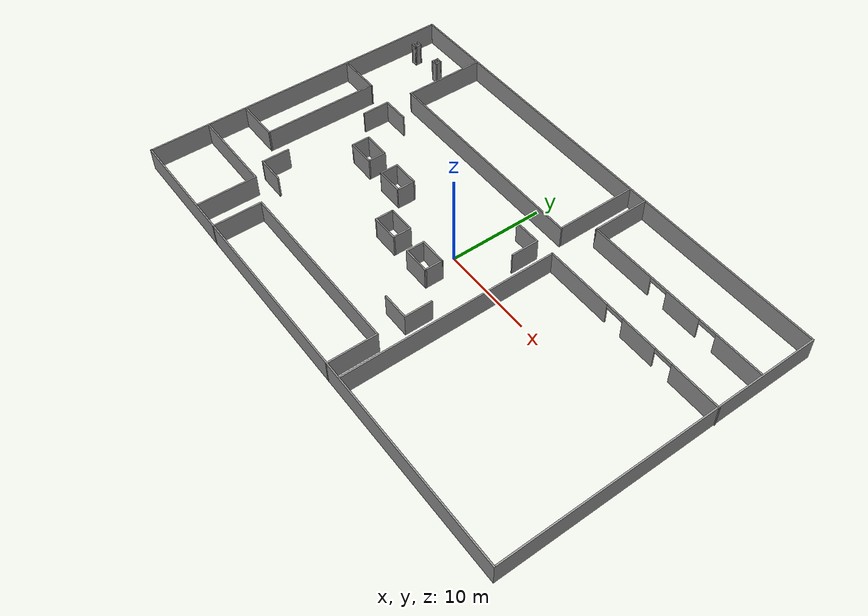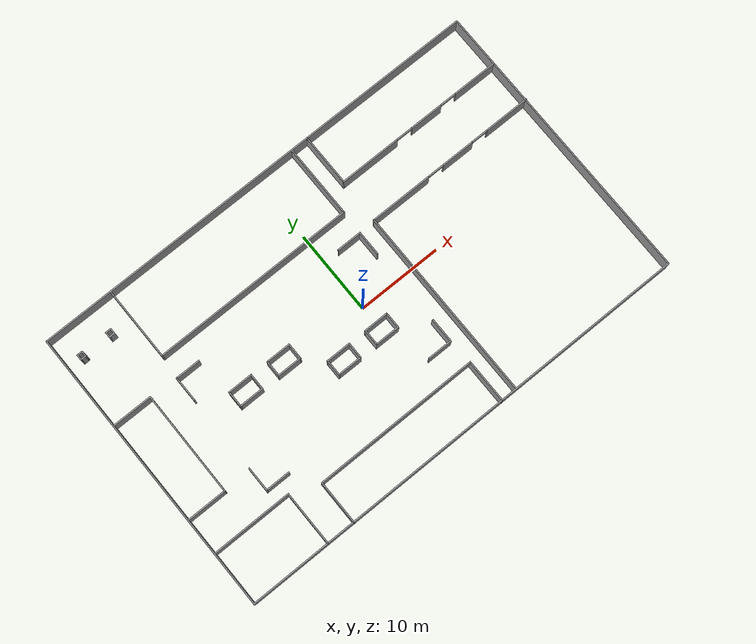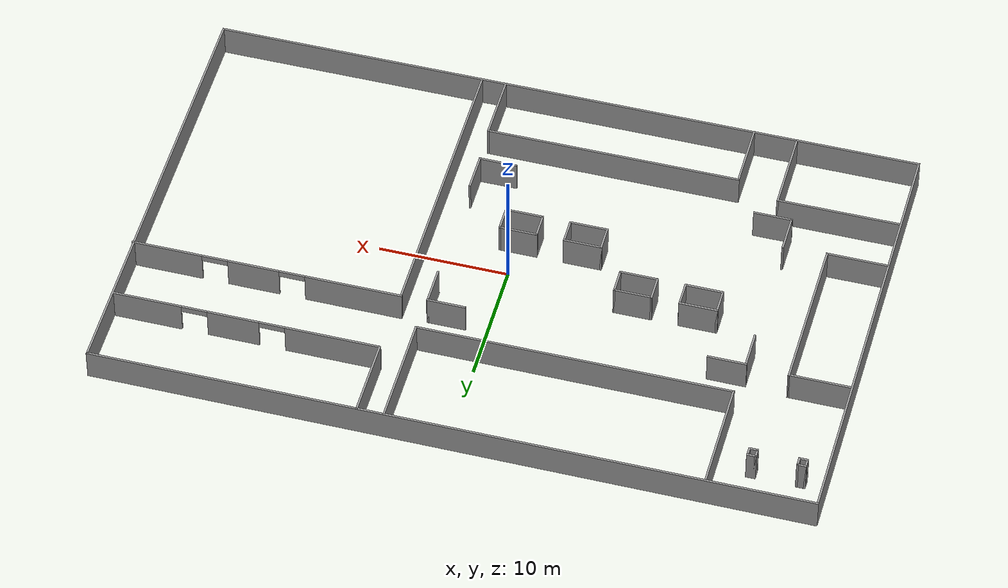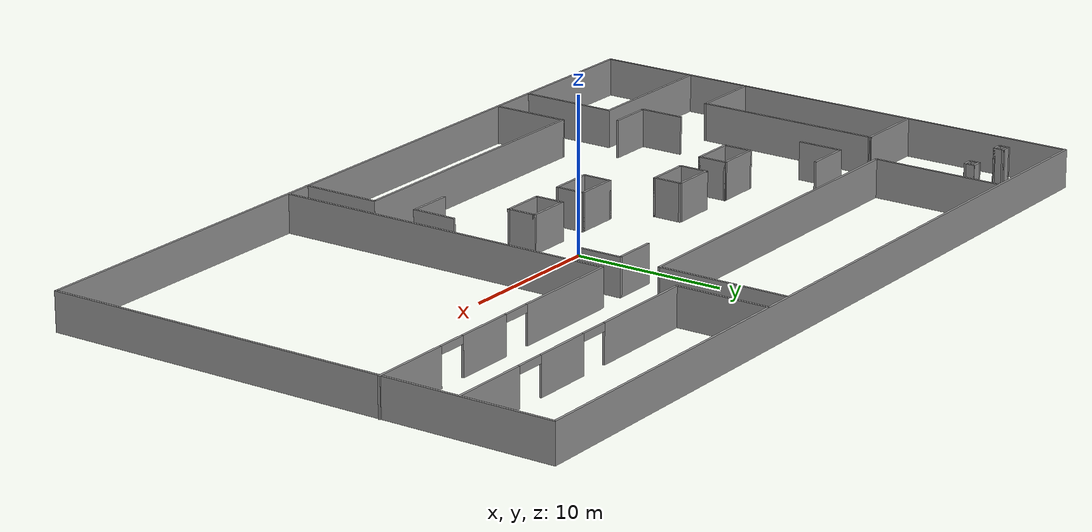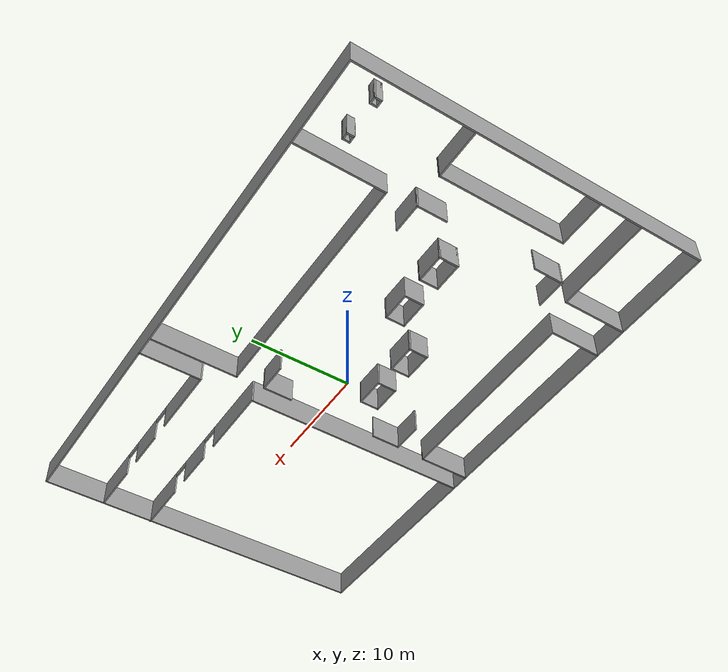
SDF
<?xml version='1.0'?>
<sdf version='1.6'>
  <model name='Fabrickhalle'>
    <pose frame=''>-0.163812 0.42455 0 0 -0 0</pose>
    <link name='Wall_100'>
      <collision name='Wall_100_Collision'>
        <geometry>
          <box>
            <size>3 0.15 2.5</size>
          </box>
        </geometry>
        <pose frame=''>0 0 1.25 0 -0 0</pose>
      </collision>
      <visual name='Wall_100_Visual'>
        <pose frame=''>0 0 1.25 0 -0 0</pose>
        <geometry>
          <box>
            <size>3 0.15 2.5</size>
          </box>
        </geometry>
        <material>
          <script>
            <uri>file://media/materials/scripts/gazebo.material</uri>
            <name>Gazebo/Grey</name>
          </script>
          <ambient>1 1 1 1</ambient>
        </material>
      </visual>
      <pose frame=''>0.010812 -4.57255 0 0 -0 0</pose>
    </link>
    <link name='Wall_102'>
      <collision name='Wall_102_Collision'>
        <geometry>
          <box>
            <size>3 0.15 2.5</size>
          </box>
        </geometry>
        <pose frame=''>0 0 1.25 0 -0 0</pose>
      </collision>
      <visual name='Wall_102_Visual'>
        <pose frame=''>0 0 1.25 0 -0 0</pose>
        <geometry>
          <box>
            <size>3 0.15 2.5</size>
          </box>
        </geometry>
        <material>
          <script>
            <uri>file://media/materials/scripts/gazebo.material</uri>
            <name>Gazebo/Grey</name>
          </script>
          <ambient>1 1 1 1</ambient>
        </material>
      </visual>
      <pose frame=''>-14.8392 1.12745 0 0 -0 0</pose>
    </link>
    <link name='Wall_103'>
      <collision name='Wall_103_Collision'>
        <geometry>
          <box>
            <size>2 0.15 2.5</size>
          </box>
        </geometry>
        <pose frame=''>0 0 1.25 0 -0 0</pose>
      </collision>
      <visual name='Wall_103_Visual'>
        <pose frame=''>0 0 1.25 0 -0 0</pose>
        <geometry>
          <box>
            <size>2 0.15 2.5</size>
          </box>
        </geometry>
        <material>
          <script>
            <uri>file://media/materials/scripts/gazebo.material</uri>
            <name>Gazebo/Grey</name>
          </script>
          <ambient>1 1 1 1</ambient>
        </material>
      </visual>
      <pose frame=''>-13.4142 0.20245 0 0 0 -1.5708</pose>
    </link>
    <link name='Wall_104'>
      <collision name='Wall_104_Collision'>
        <geometry>
          <box>
            <size>3 0.15 2.5</size>
          </box>
        </geometry>
        <pose frame=''>0 0 1.25 0 -0 0</pose>
      </collision>
      <visual name='Wall_104_Visual'>
        <pose frame=''>0 0 1.25 0 -0 0</pose>
        <geometry>
          <box>
            <size>3 0.15 2.5</size>
          </box>
        </geometry>
        <material>
          <script>
            <uri>file://media/materials/scripts/gazebo.material</uri>
            <name>Gazebo/Grey</name>
          </script>
          <ambient>1 1 1 1</ambient>
        </material>
      </visual>
      <pose frame=''>-14.8392 -0.72255 0 0 -0 3.14159</pose>
    </link>
    <link name='Wall_106'>
      <collision name='Wall_106_Collision'>
        <geometry>
          <box>
            <size>3 0.15 2.5</size>
          </box>
        </geometry>
        <pose frame=''>0 0 1.25 0 -0 0</pose>
      </collision>
      <visual name='Wall_106_Visual'>
        <pose frame=''>0 0 1.25 0 -0 0</pose>
        <geometry>
          <box>
            <size>3 0.15 2.5</size>
          </box>
        </geometry>
        <material>
          <script>
            <uri>file://media/materials/scripts/gazebo.material</uri>
            <name>Gazebo/Grey</name>
          </script>
          <ambient>1 1 1 1</ambient>
        </material>
      </visual>
      <pose frame=''>-9.83919 1.12745 0 0 -0 3.14159</pose>
    </link>
    <link name='Wall_107'>
      <collision name='Wall_107_Collision'>
        <geometry>
          <box>
            <size>2 0.15 2.5</size>
          </box>
        </geometry>
        <pose frame=''>0 0 1.25 0 -0 0</pose>
      </collision>
      <visual name='Wall_107_Visual'>
        <pose frame=''>0 0 1.25 0 -0 0</pose>
        <geometry>
          <box>
            <size>2 0.15 2.5</size>
          </box>
        </geometry>
        <material>
          <script>
            <uri>file://media/materials/scripts/gazebo.material</uri>
            <name>Gazebo/Grey</name>
          </script>
          <ambient>1 1 1 1</ambient>
        </material>
      </visual>
      <pose frame=''>-11.2642 0.20245 0 0 0 -1.5708</pose>
    </link>
    <link name='Wall_108'>
      <collision name='Wall_108_Collision'>
        <geometry>
          <box>
            <size>3 0.15 2.5</size>
          </box>
        </geometry>
        <pose frame=''>0 0 1.25 0 -0 0</pose>
      </collision>
      <visual name='Wall_108_Visual'>
        <pose frame=''>0 0 1.25 0 -0 0</pose>
        <geometry>
          <box>
            <size>3 0.15 2.5</size>
          </box>
        </geometry>
        <material>
          <script>
            <uri>file://media/materials/scripts/gazebo.material</uri>
            <name>Gazebo/Grey</name>
          </script>
          <ambient>1 1 1 1</ambient>
        </material>
      </visual>
      <pose frame=''>-9.83919 -0.72255 0 0 -0 0</pose>
    </link>
    <link name='Wall_11'>
      <pose frame=''>17.1834 11.0283 0 0 -0 0</pose>
      <visual name='Wall_11_Visual_0'>
        <pose frame=''>-6.69731 0 1.25 0 -0 0</pose>
        <geometry>
          <box>
            <size>7.35538 0.15 2.5</size>
          </box>
        </geometry>
        <material>
          <script>
            <uri>file://media/materials/scripts/gazebo.material</uri>
            <name>Gazebo/Grey</name>
          </script>
          <ambient>1 1 1 1</ambient>
        </material>
      </visual>
      <collision name='Wall_11_Collision_0'>
        <geometry>
          <box>
            <size>7.35538 0.15 2.5</size>
          </box>
        </geometry>
        <pose frame=''>-6.69731 0 1.25 0 -0 0</pose>
      </collision>
      <visual name='Wall_11_Visual_1'>
        <pose frame=''>0.980383 0 1.25 0 -0 0</pose>
        <geometry>
          <box>
            <size>4 0.15 2.5</size>
          </box>
        </geometry>
        <material>
          <script>
            <uri>file://media/materials/scripts/gazebo.material</uri>
            <name>Gazebo/Grey</name>
          </script>
          <ambient>1 1 1 1</ambient>
        </material>
      </visual>
      <collision name='Wall_11_Collision_1'>
        <geometry>
          <box>
            <size>4 0.15 2.5</size>
          </box>
        </geometry>
        <pose frame=''>0.980383 0 1.25 0 -0 0</pose>
      </collision>
      <visual name='Wall_11_Visual_2'>
        <pose frame=''>7.67769 0 1.25 0 -0 0</pose>
        <geometry>
          <box>
            <size>5.39462 0.15 2.5</size>
          </box>
        </geometry>
        <material>
          <script>
            <uri>file://media/materials/scripts/gazebo.material</uri>
            <name>Gazebo/Grey</name>
          </script>
          <ambient>1 1 1 1</ambient>
        </material>
      </visual>
      <collision name='Wall_11_Collision_2'>
        <geometry>
          <box>
            <size>5.39462 0.15 2.5</size>
          </box>
        </geometry>
        <pose frame=''>7.67769 0 1.25 0 -0 0</pose>
      </collision>
      <visual name='Wall_11_Visual_3'>
        <pose frame=''>-2.01962 0 2.25 0 -0 0</pose>
        <geometry>
          <box>
            <size>2 0.15 0.5</size>
          </box>
        </geometry>
        <material>
          <script>
            <uri>file://media/materials/scripts/gazebo.material</uri>
            <name>Gazebo/Grey</name>
          </script>
          <ambient>1 1 1 1</ambient>
        </material>
      </visual>
      <collision name='Wall_11_Collision_3'>
        <geometry>
          <box>
            <size>2 0.15 0.5</size>
          </box>
        </geometry>
        <pose frame=''>-2.01962 0 2.25 0 -0 0</pose>
      </collision>
      <visual name='Wall_11_Visual_4'>
        <pose frame=''>3.98038 0 2.25 0 -0 0</pose>
        <geometry>
          <box>
            <size>2 0.15 0.5</size>
          </box>
        </geometry>
        <material>
          <script>
            <uri>file://media/materials/scripts/gazebo.material</uri>
            <name>Gazebo/Grey</name>
          </script>
          <ambient>1 1 1 1</ambient>
        </material>
      </visual>
      <collision name='Wall_11_Collision_4'>
        <geometry>
          <box>
            <size>2 0.15 0.5</size>
          </box>
        </geometry>
        <pose frame=''>3.98038 0 2.25 0 -0 0</pose>
      </collision>
    </link>
    <link name='Wall_13'>
      <collision name='Wall_13_Collision'>
        <geometry>
          <box>
            <size>8.75 0.15 2.5</size>
          </box>
        </geometry>
        <pose frame=''>0 0 1.25 0 -0 0</pose>
      </collision>
      <visual name='Wall_13_Visual'>
        <pose frame=''>0 0 1.25 0 -0 0</pose>
        <geometry>
          <box>
            <size>8.75 0.15 2.5</size>
          </box>
        </geometry>
        <material>
          <script>
            <uri>file://media/materials/scripts/gazebo.material</uri>
            <name>Gazebo/Grey</name>
          </script>
          <ambient>1 1 1 1</ambient>
        </material>
      </visual>
      <pose frame=''>4.82435 12.7742 0 0 0 -1.5708</pose>
    </link>
    <link name='Wall_14'>
      <collision name='Wall_14_Collision'>
        <geometry>
          <box>
            <size>24.25 0.15 2.5</size>
          </box>
        </geometry>
        <pose frame=''>0 0 1.25 0 -0 0</pose>
      </collision>
      <visual name='Wall_14_Visual'>
        <pose frame=''>0 0 1.25 0 -0 0</pose>
        <geometry>
          <box>
            <size>24.25 0.15 2.5</size>
          </box>
        </geometry>
        <material>
          <script>
            <uri>file://media/materials/scripts/gazebo.material</uri>
            <name>Gazebo/Grey</name>
          </script>
          <ambient>1 1 1 1</ambient>
        </material>
      </visual>
      <pose frame=''>-7.22565 8.4742 0 0 -0 3.14159</pose>
    </link>
    <link name='Wall_15'>
      <collision name='Wall_15_Collision'>
        <geometry>
          <box>
            <size>8.75 0.15 2.5</size>
          </box>
        </geometry>
        <pose frame=''>0 0 1.25 0 -0 0</pose>
      </collision>
      <visual name='Wall_15_Visual'>
        <pose frame=''>0 0 1.25 0 -0 0</pose>
        <geometry>
          <box>
            <size>8.75 0.15 2.5</size>
          </box>
        </geometry>
        <material>
          <script>
            <uri>file://media/materials/scripts/gazebo.material</uri>
            <name>Gazebo/Grey</name>
          </script>
          <ambient>1 1 1 1</ambient>
        </material>
      </visual>
      <pose frame=''>-19.2757 12.7742 0 0 -0 1.5708</pose>
    </link>
    <link name='Wall_17'>
      <pose frame=''>17.1552 5.80654 0 0 -0 3.14159</pose>
      <visual name='Wall_17_Visual_0'>
        <pose frame=''>-7.75431 0 1.25 0 -0 0</pose>
        <geometry>
          <box>
            <size>5.49138 0.15 2.5</size>
          </box>
        </geometry>
        <material>
          <script>
            <uri>file://media/materials/scripts/gazebo.material</uri>
            <name>Gazebo/Grey</name>
          </script>
          <ambient>1 1 1 1</ambient>
        </material>
      </visual>
      <collision name='Wall_17_Collision_0'>
        <geometry>
          <box>
            <size>5.49138 0.15 2.5</size>
          </box>
        </geometry>
        <pose frame=''>-7.75431 0 1.25 0 -0 0</pose>
      </collision>
      <visual name='Wall_17_Visual_1'>
        <pose frame=''>-1.00862 0 1.25 0 -0 0</pose>
        <geometry>
          <box>
            <size>4 0.15 2.5</size>
          </box>
        </geometry>
        <material>
          <script>
            <uri>file://media/materials/scripts/gazebo.material</uri>
            <name>Gazebo/Grey</name>
          </script>
          <ambient>1 1 1 1</ambient>
        </material>
      </visual>
      <collision name='Wall_17_Collision_1'>
        <geometry>
          <box>
            <size>4 0.15 2.5</size>
          </box>
        </geometry>
        <pose frame=''>-1.00862 0 1.25 0 -0 0</pose>
      </collision>
      <visual name='Wall_17_Visual_2'>
        <pose frame=''>6.74569 0 1.25 0 -0 0</pose>
        <geometry>
          <box>
            <size>7.50862 0.15 2.5</size>
          </box>
        </geometry>
        <material>
          <script>
            <uri>file://media/materials/scripts/gazebo.material</uri>
            <name>Gazebo/Grey</name>
          </script>
          <ambient>1 1 1 1</ambient>
        </material>
      </visual>
      <collision name='Wall_17_Collision_2'>
        <geometry>
          <box>
            <size>7.50862 0.15 2.5</size>
          </box>
        </geometry>
        <pose frame=''>6.74569 0 1.25 0 -0 0</pose>
      </collision>
      <visual name='Wall_17_Visual_3'>
        <pose frame=''>-4.00862 0 2.25 0 -0 0</pose>
        <geometry>
          <box>
            <size>2 0.15 0.5</size>
          </box>
        </geometry>
        <material>
          <script>
            <uri>file://media/materials/scripts/gazebo.material</uri>
            <name>Gazebo/Grey</name>
          </script>
          <ambient>1 1 1 1</ambient>
        </material>
      </visual>
      <collision name='Wall_17_Collision_3'>
        <geometry>
          <box>
            <size>2 0.15 0.5</size>
          </box>
        </geometry>
        <pose frame=''>-4.00862 0 2.25 0 -0 0</pose>
      </collision>
      <visual name='Wall_17_Visual_4'>
        <pose frame=''>1.99138 0 2.25 0 -0 0</pose>
        <geometry>
          <box>
            <size>2 0.15 0.5</size>
          </box>
        </geometry>
        <material>
          <script>
            <uri>file://media/materials/scripts/gazebo.material</uri>
            <name>Gazebo/Grey</name>
          </script>
          <ambient>1 1 1 1</ambient>
        </material>
      </visual>
      <collision name='Wall_17_Collision_4'>
        <geometry>
          <box>
            <size>2 0.15 0.5</size>
          </box>
        </geometry>
        <pose frame=''>1.99138 0 2.25 0 -0 0</pose>
      </collision>
    </link>
    <link name='Wall_19'>
      <collision name='Wall_19_Collision'>
        <geometry>
          <box>
            <size>23 0.15 2.5</size>
          </box>
        </geometry>
        <pose frame=''>0 0 1.25 0 -0 0</pose>
      </collision>
      <visual name='Wall_19_Visual'>
        <pose frame=''>0 0 1.25 0 -0 0</pose>
        <geometry>
          <box>
            <size>23 0.15 2.5</size>
          </box>
        </geometry>
        <material>
          <script>
            <uri>file://media/materials/scripts/gazebo.material</uri>
            <name>Gazebo/Grey</name>
          </script>
          <ambient>1 1 1 1</ambient>
        </material>
      </visual>
      <pose frame=''>6.73019 -5.61846 0 0 0 -1.5708</pose>
    </link>
    <link name='Wall_2'>
      <collision name='Wall_2_Collision'>
        <geometry>
          <box>
            <size>55.2327 0.15 2.5</size>
          </box>
        </geometry>
        <pose frame=''>0 0 1.25 0 -0 0</pose>
      </collision>
      <visual name='Wall_2_Visual'>
        <pose frame=''>0 0 1.25 0 -0 0</pose>
        <geometry>
          <box>
            <size>55.2327 0.15 2.5</size>
          </box>
        </geometry>
        <material>
          <script>
            <uri>file://media/materials/scripts/gazebo.material</uri>
            <name>Gazebo/Grey</name>
          </script>
          <ambient>1 1 1 1</ambient>
        </material>
      </visual>
      <pose frame=''>-0.038688 17.1755 0 0 -0 3.14159</pose>
    </link>
    <link name='Wall_21'>
      <collision name='Wall_21_Collision'>
        <geometry>
          <box>
            <size>4.7586 0.15 2.5</size>
          </box>
        </geometry>
        <pose frame=''>0 0 1.25 0 -0 0</pose>
      </collision>
      <visual name='Wall_21_Visual'>
        <pose frame=''>0 0 1.25 0 -0 0</pose>
        <geometry>
          <box>
            <size>4.7586 0.15 2.5</size>
          </box>
        </geometry>
        <material>
          <script>
            <uri>file://media/materials/scripts/gazebo.material</uri>
            <name>Gazebo/Grey</name>
          </script>
          <ambient>1 1 1 1</ambient>
        </material>
      </visual>
      <pose frame=''>-25.14 5.86914 0 0 0 -0.000933</pose>
    </link>
    <link name='Wall_26'>
      <collision name='Wall_26_Collision'>
        <geometry>
          <box>
            <size>12.4964 0.15 2.5</size>
          </box>
        </geometry>
        <pose frame=''>0 0 1.25 0 -0 0</pose>
      </collision>
      <visual name='Wall_26_Visual'>
        <pose frame=''>0 0 1.25 0 -0 0</pose>
        <geometry>
          <box>
            <size>12.4964 0.15 2.5</size>
          </box>
        </geometry>
        <material>
          <script>
            <uri>file://media/materials/scripts/gazebo.material</uri>
            <name>Gazebo/Grey</name>
          </script>
          <ambient>1 1 1 1</ambient>
        </material>
      </visual>
      <pose frame=''>-22.8608 -0.306151 0 0 0 -1.57486</pose>
    </link>
    <link name='Wall_27'>
      <collision name='Wall_27_Collision'>
        <geometry>
          <box>
            <size>4.75 0.15 2.5</size>
          </box>
        </geometry>
        <pose frame=''>0 0 1.25 0 -0 0</pose>
      </collision>
      <visual name='Wall_27_Visual'>
        <pose frame=''>0 0 1.25 0 -0 0</pose>
        <geometry>
          <box>
            <size>4.75 0.15 2.5</size>
          </box>
        </geometry>
        <material>
          <script>
            <uri>file://media/materials/scripts/gazebo.material</uri>
            <name>Gazebo/Grey</name>
          </script>
          <ambient>1 1 1 1</ambient>
        </material>
      </visual>
      <pose frame=''>-25.184 -6.47929 0 0 -0 3.14159</pose>
    </link>
    <link name='Wall_29'>
      <collision name='Wall_29_Collision'>
        <geometry>
          <box>
            <size>9.5 0.15 2.5</size>
          </box>
        </geometry>
        <pose frame=''>0 0 1.25 0 -0 0</pose>
      </collision>
      <visual name='Wall_29_Visual'>
        <pose frame=''>0 0 1.25 0 -0 0</pose>
        <geometry>
          <box>
            <size>9.5 0.15 2.5</size>
          </box>
        </geometry>
        <material>
          <script>
            <uri>file://media/materials/scripts/gazebo.material</uri>
            <name>Gazebo/Grey</name>
          </script>
          <ambient>1 1 1 1</ambient>
        </material>
      </visual>
      <pose frame=''>-22.7716 -10.7841 0 0 -0 0</pose>
    </link>
    <link name='Wall_3'>
      <collision name='Wall_3_Collision'>
        <geometry>
          <box>
            <size>34.4915 0.15 2.5</size>
          </box>
        </geometry>
        <pose frame=''>0 0 1.25 0 -0 0</pose>
      </collision>
      <visual name='Wall_3_Visual'>
        <pose frame=''>0 0 1.25 0 -0 0</pose>
        <geometry>
          <box>
            <size>34.4915 0.15 2.5</size>
          </box>
        </geometry>
        <material>
          <script>
            <uri>file://media/materials/scripts/gazebo.material</uri>
            <name>Gazebo/Grey</name>
          </script>
          <ambient>1 1 1 1</ambient>
        </material>
      </visual>
      <pose frame=''>-27.5802 0.00445 0 0 0 -1.5708</pose>
    </link>
    <link name='Wall_31'>
      <collision name='Wall_31_Collision'>
        <geometry>
          <box>
            <size>6.5 0.15 2.5</size>
          </box>
        </geometry>
        <pose frame=''>0 0 1.25 0 -0 0</pose>
      </collision>
      <visual name='Wall_31_Visual'>
        <pose frame=''>0 0 1.25 0 -0 0</pose>
        <geometry>
          <box>
            <size>6.5 0.15 2.5</size>
          </box>
        </geometry>
        <material>
          <script>
            <uri>file://media/materials/scripts/gazebo.material</uri>
            <name>Gazebo/Grey</name>
          </script>
          <ambient>1 1 1 1</ambient>
        </material>
      </visual>
      <pose frame=''>-18.0966 -13.9591 0 0 0 -1.5708</pose>
    </link>
    <link name='Wall_37'>
      <collision name='Wall_37_Collision'>
        <geometry>
          <box>
            <size>5.25 0.15 2.5</size>
          </box>
        </geometry>
        <pose frame=''>0 0 1.25 0 -0 0</pose>
      </collision>
      <visual name='Wall_37_Visual'>
        <pose frame=''>0 0 1.25 0 -0 0</pose>
        <geometry>
          <box>
            <size>5.25 0.15 2.5</size>
          </box>
        </geometry>
        <material>
          <script>
            <uri>file://media/materials/scripts/gazebo.material</uri>
            <name>Gazebo/Grey</name>
          </script>
          <ambient>1 1 1 1</ambient>
        </material>
      </visual>
      <pose frame=''>-14.7437 -14.6255 0 0 -0 1.5708</pose>
    </link>
    <link name='Wall_38'>
      <collision name='Wall_38_Collision'>
        <geometry>
          <box>
            <size>19.75 0.15 2.5</size>
          </box>
        </geometry>
        <pose frame=''>0 0 1.25 0 -0 0</pose>
      </collision>
      <visual name='Wall_38_Visual'>
        <pose frame=''>0 0 1.25 0 -0 0</pose>
        <geometry>
          <box>
            <size>19.75 0.15 2.5</size>
          </box>
        </geometry>
        <material>
          <script>
            <uri>file://media/materials/scripts/gazebo.material</uri>
            <name>Gazebo/Grey</name>
          </script>
          <ambient>1 1 1 1</ambient>
        </material>
      </visual>
      <pose frame=''>-4.94367 -12.0755 0 0 -0 0</pose>
    </link>
    <link name='Wall_39'>
      <collision name='Wall_39_Collision'>
        <geometry>
          <box>
            <size>5.25 0.15 2.5</size>
          </box>
        </geometry>
        <pose frame=''>0 0 1.25 0 -0 0</pose>
      </collision>
      <visual name='Wall_39_Visual'>
        <pose frame=''>0 0 1.25 0 -0 0</pose>
        <geometry>
          <box>
            <size>5.25 0.15 2.5</size>
          </box>
        </geometry>
        <material>
          <script>
            <uri>file://media/materials/scripts/gazebo.material</uri>
            <name>Gazebo/Grey</name>
          </script>
          <ambient>1 1 1 1</ambient>
        </material>
      </visual>
      <pose frame=''>4.85633 -14.6255 0 0 0 -1.5708</pose>
    </link>
    <link name='Wall_4'>
      <collision name='Wall_4_Collision'>
        <geometry>
          <box>
            <size>55.233 0.15 2.5</size>
          </box>
        </geometry>
        <pose frame=''>0 0 1.25 0 -0 0</pose>
      </collision>
      <visual name='Wall_4_Visual'>
        <pose frame=''>0 0 1.25 0 -0 0</pose>
        <geometry>
          <box>
            <size>55.233 0.15 2.5</size>
          </box>
        </geometry>
        <material>
          <script>
            <uri>file://media/materials/scripts/gazebo.material</uri>
            <name>Gazebo/Grey</name>
          </script>
          <ambient>1 1 1 1</ambient>
        </material>
      </visual>
      <pose frame=''>-0.038688 -17.1666 0 0 -0 0</pose>
    </link>
    <link name='Wall_46'>
      <collision name='Wall_46_Collision'>
        <geometry>
          <box>
            <size>3 0.15 2.5</size>
          </box>
        </geometry>
        <pose frame=''>0 0 1.25 0 -0 0</pose>
      </collision>
      <visual name='Wall_46_Visual'>
        <pose frame=''>0 0 1.25 0 -0 0</pose>
        <geometry>
          <box>
            <size>3 0.15 2.5</size>
          </box>
        </geometry>
        <material>
          <script>
            <uri>file://media/materials/scripts/gazebo.material</uri>
            <name>Gazebo/Grey</name>
          </script>
          <ambient>1 1 1 1</ambient>
        </material>
      </visual>
      <pose frame=''>4.71381 -7.69355 0 0 -0 1.5708</pose>
    </link>
    <link name='Wall_48'>
      <collision name='Wall_48_Collision'>
        <geometry>
          <box>
            <size>3 0.15 2.5</size>
          </box>
        </geometry>
        <pose frame=''>0 0 1.25 0 -0 0</pose>
      </collision>
      <visual name='Wall_48_Visual'>
        <pose frame=''>0 0 1.25 0 -0 0</pose>
        <geometry>
          <box>
            <size>3 0.15 2.5</size>
          </box>
        </geometry>
        <material>
          <script>
            <uri>file://media/materials/scripts/gazebo.material</uri>
            <name>Gazebo/Grey</name>
          </script>
          <ambient>1 1 1 1</ambient>
        </material>
      </visual>
      <pose frame=''>3.28881 -9.11855 0 0 -0 3.14159</pose>
    </link>
    <link name='Wall_5'>
      <collision name='Wall_5_Collision'>
        <geometry>
          <box>
            <size>34.4915 0.15 2.5</size>
          </box>
        </geometry>
        <pose frame=''>0 0 1.25 0 -0 0</pose>
      </collision>
      <visual name='Wall_5_Visual'>
        <pose frame=''>0 0 1.25 0 -0 0</pose>
        <geometry>
          <box>
            <size>34.4915 0.15 2.5</size>
          </box>
        </geometry>
        <material>
          <script>
            <uri>file://media/materials/scripts/gazebo.material</uri>
            <name>Gazebo/Grey</name>
          </script>
          <ambient>1 1 1 1</ambient>
        </material>
      </visual>
      <pose frame=''>27.5028 0.00445 0 0 -0 1.5708</pose>
    </link>
    <link name='Wall_50'>
      <collision name='Wall_50_Collision'>
        <geometry>
          <box>
            <size>3 0.15 2.5</size>
          </box>
        </geometry>
        <pose frame=''>0 0 1.25 0 -0 0</pose>
      </collision>
      <visual name='Wall_50_Visual'>
        <pose frame=''>0 0 1.25 0 -0 0</pose>
        <geometry>
          <box>
            <size>3 0.15 2.5</size>
          </box>
        </geometry>
        <material>
          <script>
            <uri>file://media/materials/scripts/gazebo.material</uri>
            <name>Gazebo/Grey</name>
          </script>
          <ambient>1 1 1 1</ambient>
        </material>
      </visual>
      <pose frame=''>-18.1172 -9.11855 0 0 -0 0</pose>
    </link>
    <link name='Wall_52'>
      <collision name='Wall_52_Collision'>
        <geometry>
          <box>
            <size>3.00022 0.15 2.5</size>
          </box>
        </geometry>
        <pose frame=''>0 0 1.25 0 -0 0</pose>
      </collision>
      <visual name='Wall_52_Visual'>
        <pose frame=''>0 0 1.25 0 -0 0</pose>
        <geometry>
          <box>
            <size>3.00022 0.15 2.5</size>
          </box>
        </geometry>
        <material>
          <script>
            <uri>file://media/materials/scripts/gazebo.material</uri>
            <name>Gazebo/Grey</name>
          </script>
          <ambient>1 1 1 1</ambient>
        </material>
      </visual>
      <pose frame=''>-19.5422 -7.69355 0 0 -0 1.5708</pose>
    </link>
    <link name='Wall_54'>
      <collision name='Wall_54_Collision'>
        <geometry>
          <box>
            <size>3 0.15 2.5</size>
          </box>
        </geometry>
        <pose frame=''>0 0 1.25 0 -0 0</pose>
      </collision>
      <visual name='Wall_54_Visual'>
        <pose frame=''>0 0 1.25 0 -0 0</pose>
        <geometry>
          <box>
            <size>3 0.15 2.5</size>
          </box>
        </geometry>
        <material>
          <script>
            <uri>file://media/materials/scripts/gazebo.material</uri>
            <name>Gazebo/Grey</name>
          </script>
          <ambient>1 1 1 1</ambient>
        </material>
      </visual>
      <pose frame=''>-19.5422 4.24845 0 0 0 -1.5708</pose>
    </link>
    <link name='Wall_56'>
      <collision name='Wall_56_Collision'>
        <geometry>
          <box>
            <size>3 0.15 2.5</size>
          </box>
        </geometry>
        <pose frame=''>0 0 1.25 0 -0 0</pose>
      </collision>
      <visual name='Wall_56_Visual'>
        <pose frame=''>0 0 1.25 0 -0 0</pose>
        <geometry>
          <box>
            <size>3 0.15 2.5</size>
          </box>
        </geometry>
        <material>
          <script>
            <uri>file://media/materials/scripts/gazebo.material</uri>
            <name>Gazebo/Grey</name>
          </script>
          <ambient>1 1 1 1</ambient>
        </material>
      </visual>
      <pose frame=''>-18.1172 5.67345 0 0 -0 0</pose>
    </link>
    <link name='Wall_58'>
      <collision name='Wall_58_Collision'>
        <geometry>
          <box>
            <size>0.75 0.15 2.5</size>
          </box>
        </geometry>
        <pose frame=''>0 0 1.25 0 -0 0</pose>
      </collision>
      <visual name='Wall_58_Visual'>
        <pose frame=''>0 0 1.25 0 -0 0</pose>
        <geometry>
          <box>
            <size>0.75 0.15 2.5</size>
          </box>
        </geometry>
        <material>
          <script>
            <uri>file://media/materials/scripts/gazebo.material</uri>
            <name>Gazebo/Grey</name>
          </script>
          <ambient>1 1 1 1</ambient>
        </material>
      </visual>
      <pose frame=''>-25.9719 13.7106 0 0 0 -1.5708</pose>
    </link>
    <link name='Wall_59'>
      <collision name='Wall_59_Collision'>
        <geometry>
          <box>
            <size>0.75 0.15 2.5</size>
          </box>
        </geometry>
        <pose frame=''>0 0 1.25 0 -0 0</pose>
      </collision>
      <visual name='Wall_59_Visual'>
        <pose frame=''>0 0 1.25 0 -0 0</pose>
        <geometry>
          <box>
            <size>0.75 0.15 2.5</size>
          </box>
        </geometry>
        <material>
          <script>
            <uri>file://media/materials/scripts/gazebo.material</uri>
            <name>Gazebo/Grey</name>
          </script>
          <ambient>1 1 1 1</ambient>
        </material>
      </visual>
      <pose frame=''>-25.6719 13.4106 0 0 -0 0</pose>
    </link>
    <link name='Wall_60'>
      <collision name='Wall_60_Collision'>
        <geometry>
          <box>
            <size>0.75 0.15 2.5</size>
          </box>
        </geometry>
        <pose frame=''>0 0 1.25 0 -0 0</pose>
      </collision>
      <visual name='Wall_60_Visual'>
        <pose frame=''>0 0 1.25 0 -0 0</pose>
        <geometry>
          <box>
            <size>0.75 0.15 2.5</size>
          </box>
        </geometry>
        <material>
          <script>
            <uri>file://media/materials/scripts/gazebo.material</uri>
            <name>Gazebo/Grey</name>
          </script>
          <ambient>1 1 1 1</ambient>
        </material>
      </visual>
      <pose frame=''>-25.3719 13.7106 0 0 -0 1.5708</pose>
    </link>
    <link name='Wall_61'>
      <collision name='Wall_61_Collision'>
        <geometry>
          <box>
            <size>0.75 0.15 2.5</size>
          </box>
        </geometry>
        <pose frame=''>0 0 1.25 0 -0 0</pose>
      </collision>
      <visual name='Wall_61_Visual'>
        <pose frame=''>0 0 1.25 0 -0 0</pose>
        <geometry>
          <box>
            <size>0.75 0.15 2.5</size>
          </box>
        </geometry>
        <material>
          <script>
            <uri>file://media/materials/scripts/gazebo.material</uri>
            <name>Gazebo/Grey</name>
          </script>
          <ambient>1 1 1 1</ambient>
        </material>
      </visual>
      <pose frame=''>-25.6719 14.0106 0 0 -0 3.14159</pose>
    </link>
    <link name='Wall_68'>
      <collision name='Wall_68_Collision'>
        <geometry>
          <box>
            <size>0.75 0.15 2.5</size>
          </box>
        </geometry>
        <pose frame=''>0 0 1.25 0 -0 0</pose>
      </collision>
      <visual name='Wall_68_Visual'>
        <pose frame=''>0 0 1.25 0 -0 0</pose>
        <geometry>
          <box>
            <size>0.75 0.15 2.5</size>
          </box>
        </geometry>
        <material>
          <script>
            <uri>file://media/materials/scripts/gazebo.material</uri>
            <name>Gazebo/Grey</name>
          </script>
          <ambient>1 1 1 1</ambient>
        </material>
      </visual>
      <pose frame=''>-21.9577 14.037 0 0 -0 0</pose>
    </link>
    <link name='Wall_69'>
      <collision name='Wall_69_Collision'>
        <geometry>
          <box>
            <size>0.75 0.15 2.5</size>
          </box>
        </geometry>
        <pose frame=''>0 0 1.25 0 -0 0</pose>
      </collision>
      <visual name='Wall_69_Visual'>
        <pose frame=''>0 0 1.25 0 -0 0</pose>
        <geometry>
          <box>
            <size>0.75 0.15 2.5</size>
          </box>
        </geometry>
        <material>
          <script>
            <uri>file://media/materials/scripts/gazebo.material</uri>
            <name>Gazebo/Grey</name>
          </script>
          <ambient>1 1 1 1</ambient>
        </material>
      </visual>
      <pose frame=''>-21.6577 13.737 0 0 0 -1.5708</pose>
    </link>
    <link name='Wall_70'>
      <collision name='Wall_70_Collision'>
        <geometry>
          <box>
            <size>0.75 0.15 2.5</size>
          </box>
        </geometry>
        <pose frame=''>0 0 1.25 0 -0 0</pose>
      </collision>
      <visual name='Wall_70_Visual'>
        <pose frame=''>0 0 1.25 0 -0 0</pose>
        <geometry>
          <box>
            <size>0.75 0.15 2.5</size>
          </box>
        </geometry>
        <material>
          <script>
            <uri>file://media/materials/scripts/gazebo.material</uri>
            <name>Gazebo/Grey</name>
          </script>
          <ambient>1 1 1 1</ambient>
        </material>
      </visual>
      <pose frame=''>-21.9577 13.437 0 0 -0 3.14159</pose>
    </link>
    <link name='Wall_71'>
      <collision name='Wall_71_Collision'>
        <geometry>
          <box>
            <size>0.75 0.15 2.5</size>
          </box>
        </geometry>
        <pose frame=''>0 0 1.25 0 -0 0</pose>
      </collision>
      <visual name='Wall_71_Visual'>
        <pose frame=''>0 0 1.25 0 -0 0</pose>
        <geometry>
          <box>
            <size>0.75 0.15 2.5</size>
          </box>
        </geometry>
        <material>
          <script>
            <uri>file://media/materials/scripts/gazebo.material</uri>
            <name>Gazebo/Grey</name>
          </script>
          <ambient>1 1 1 1</ambient>
        </material>
      </visual>
      <pose frame=''>-22.2577 13.737 0 0 -0 1.5708</pose>
    </link>
    <link name='Wall_73'>
      <collision name='Wall_73_Collision'>
        <geometry>
          <box>
            <size>3 0.15 2.5</size>
          </box>
        </geometry>
        <pose frame=''>0 0 1.25 0 -0 0</pose>
      </collision>
      <visual name='Wall_73_Visual'>
        <pose frame=''>0 0 1.25 0 -0 0</pose>
        <geometry>
          <box>
            <size>3 0.15 2.5</size>
          </box>
        </geometry>
        <material>
          <script>
            <uri>file://media/materials/scripts/gazebo.material</uri>
            <name>Gazebo/Grey</name>
          </script>
          <ambient>1 1 1 1</ambient>
        </material>
      </visual>
      <pose frame=''>3.28881 5.67345 0 0 -0 3.14159</pose>
    </link>
    <link name='Wall_75'>
      <collision name='Wall_75_Collision'>
        <geometry>
          <box>
            <size>3 0.15 2.5</size>
          </box>
        </geometry>
        <pose frame=''>0 0 1.25 0 -0 0</pose>
      </collision>
      <visual name='Wall_75_Visual'>
        <pose frame=''>0 0 1.25 0 -0 0</pose>
        <geometry>
          <box>
            <size>3 0.15 2.5</size>
          </box>
        </geometry>
        <material>
          <script>
            <uri>file://media/materials/scripts/gazebo.material</uri>
            <name>Gazebo/Grey</name>
          </script>
          <ambient>1 1 1 1</ambient>
        </material>
      </visual>
      <pose frame=''>4.71381 4.24845 0 0 0 -1.5708</pose>
    </link>
    <link name='Wall_78'>
      <collision name='Wall_78_Collision'>
        <geometry>
          <box>
            <size>2 0.15 2.5</size>
          </box>
        </geometry>
        <pose frame=''>0 0 1.25 0 -0 0</pose>
      </collision>
      <visual name='Wall_78_Visual'>
        <pose frame=''>0 0 1.25 0 -0 0</pose>
        <geometry>
          <box>
            <size>2 0.15 2.5</size>
          </box>
        </geometry>
        <material>
          <script>
            <uri>file://media/materials/scripts/gazebo.material</uri>
            <name>Gazebo/Grey</name>
          </script>
          <ambient>1 1 1 1</ambient>
        </material>
      </visual>
      <pose frame=''>-8.41419 0.20245 0 0 -0 1.5708</pose>
    </link>
    <link name='Wall_8'>
      <collision name='Wall_8_Collision'>
        <geometry>
          <box>
            <size>6.25 0.15 2.5</size>
          </box>
        </geometry>
        <pose frame=''>0 0 1.25 0 -0 0</pose>
      </collision>
      <visual name='Wall_8_Visual'>
        <pose frame=''>0 0 1.25 0 -0 0</pose>
        <geometry>
          <box>
            <size>6.25 0.15 2.5</size>
          </box>
        </geometry>
        <material>
          <script>
            <uri>file://media/materials/scripts/gazebo.material</uri>
            <name>Gazebo/Grey</name>
          </script>
          <ambient>1 1 1 1</ambient>
        </material>
      </visual>
      <pose frame=''>6.88343 14.0783 0 0 0 -1.5708</pose>
    </link>
    <link name='Wall_80'>
      <collision name='Wall_80_Collision'>
        <geometry>
          <box>
            <size>2 0.15 2.5</size>
          </box>
        </geometry>
        <pose frame=''>0 0 1.25 0 -0 0</pose>
      </collision>
      <visual name='Wall_80_Visual'>
        <pose frame=''>0 0 1.25 0 -0 0</pose>
        <geometry>
          <box>
            <size>2 0.15 2.5</size>
          </box>
        </geometry>
        <material>
          <script>
            <uri>file://media/materials/scripts/gazebo.material</uri>
            <name>Gazebo/Grey</name>
          </script>
          <ambient>1 1 1 1</ambient>
        </material>
      </visual>
      <pose frame=''>-6.41419 -3.64755 0 0 0 -1.5708</pose>
    </link>
    <link name='Wall_87'>
      <collision name='Wall_87_Collision'>
        <geometry>
          <box>
            <size>2 0.15 2.5</size>
          </box>
        </geometry>
        <pose frame=''>0 0 1.25 0 -0 0</pose>
      </collision>
      <visual name='Wall_87_Visual'>
        <pose frame=''>0 0 1.25 0 -0 0</pose>
        <geometry>
          <box>
            <size>2 0.15 2.5</size>
          </box>
        </geometry>
        <material>
          <script>
            <uri>file://media/materials/scripts/gazebo.material</uri>
            <name>Gazebo/Grey</name>
          </script>
          <ambient>1 1 1 1</ambient>
        </material>
      </visual>
      <pose frame=''>-16.2642 0.20245 0 0 0 -1.5708</pose>
    </link>
    <link name='Wall_91'>
      <collision name='Wall_91_Collision'>
        <geometry>
          <box>
            <size>2 0.15 2.5</size>
          </box>
        </geometry>
        <pose frame=''>0 0 1.25 0 -0 0</pose>
      </collision>
      <visual name='Wall_91_Visual'>
        <pose frame=''>0 0 1.25 0 -0 0</pose>
        <geometry>
          <box>
            <size>2 0.15 2.5</size>
          </box>
        </geometry>
        <material>
          <script>
            <uri>file://media/materials/scripts/gazebo.material</uri>
            <name>Gazebo/Grey</name>
          </script>
          <ambient>1 1 1 1</ambient>
        </material>
      </visual>
      <pose frame=''>1.43581 -3.64755 0 0 0 -1.5708</pose>
    </link>
    <link name='Wall_94'>
      <collision name='Wall_94_Collision'>
        <geometry>
          <box>
            <size>3 0.15 2.5</size>
          </box>
        </geometry>
        <pose frame=''>0 0 1.25 0 -0 0</pose>
      </collision>
      <visual name='Wall_94_Visual'>
        <pose frame=''>0 0 1.25 0 -0 0</pose>
        <geometry>
          <box>
            <size>3 0.15 2.5</size>
          </box>
        </geometry>
        <material>
          <script>
            <uri>file://media/materials/scripts/gazebo.material</uri>
            <name>Gazebo/Grey</name>
          </script>
          <ambient>1 1 1 1</ambient>
        </material>
      </visual>
      <pose frame=''>-4.98919 -2.72255 0 0 -0 0</pose>
    </link>
    <link name='Wall_95'>
      <collision name='Wall_95_Collision'>
        <geometry>
          <box>
            <size>2 0.15 2.5</size>
          </box>
        </geometry>
        <pose frame=''>0 0 1.25 0 -0 0</pose>
      </collision>
      <visual name='Wall_95_Visual'>
        <pose frame=''>0 0 1.25 0 -0 0</pose>
        <geometry>
          <box>
            <size>2 0.15 2.5</size>
          </box>
        </geometry>
        <material>
          <script>
            <uri>file://media/materials/scripts/gazebo.material</uri>
            <name>Gazebo/Grey</name>
          </script>
          <ambient>1 1 1 1</ambient>
        </material>
      </visual>
      <pose frame=''>-3.56419 -3.64755 0 0 0 -1.5708</pose>
    </link>
    <link name='Wall_96'>
      <collision name='Wall_96_Collision'>
        <geometry>
          <box>
            <size>3 0.15 2.5</size>
          </box>
        </geometry>
        <pose frame=''>0 0 1.25 0 -0 0</pose>
      </collision>
      <visual name='Wall_96_Visual'>
        <pose frame=''>0 0 1.25 0 -0 0</pose>
        <geometry>
          <box>
            <size>3 0.15 2.5</size>
          </box>
        </geometry>
        <material>
          <script>
            <uri>file://media/materials/scripts/gazebo.material</uri>
            <name>Gazebo/Grey</name>
          </script>
          <ambient>1 1 1 1</ambient>
        </material>
      </visual>
      <pose frame=''>-4.98919 -4.57255 0 0 -0 3.14159</pose>
    </link>
    <link name='Wall_98'>
      <collision name='Wall_98_Collision'>
        <geometry>
          <box>
            <size>3 0.15 2.5</size>
          </box>
        </geometry>
        <pose frame=''>0 0 1.25 0 -0 0</pose>
      </collision>
      <visual name='Wall_98_Visual'>
        <pose frame=''>0 0 1.25 0 -0 0</pose>
        <geometry>
          <box>
            <size>3 0.15 2.5</size>
          </box>
        </geometry>
        <material>
          <script>
            <uri>file://media/materials/scripts/gazebo.material</uri>
            <name>Gazebo/Grey</name>
          </script>
          <ambient>1 1 1 1</ambient>
        </material>
      </visual>
      <pose frame=''>0.010812 -2.72255 0 0 -0 3.14159</pose>
    </link>
    <link name='Wall_99'>
      <collision name='Wall_99_Collision'>
        <geometry>
          <box>
            <size>2 0.15 2.5</size>
          </box>
        </geometry>
        <pose frame=''>0 0 1.25 0 -0 0</pose>
      </collision>
      <visual name='Wall_99_Visual'>
        <pose frame=''>0 0 1.25 0 -0 0</pose>
        <geometry>
          <box>
            <size>2 0.15 2.5</size>
          </box>
        </geometry>
        <material>
          <script>
            <uri>file://media/materials/scripts/gazebo.material</uri>
            <name>Gazebo/Grey</name>
          </script>
          <ambient>1 1 1 1</ambient>
        </material>
      </visual>
      <pose frame=''>-1.41419 -3.64755 0 0 0 -1.5708</pose>
    </link>
    <static>1</static>
  </model>
</sdf>
